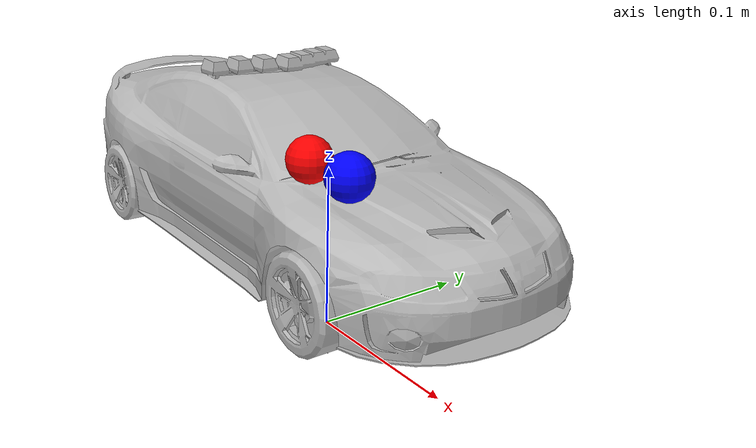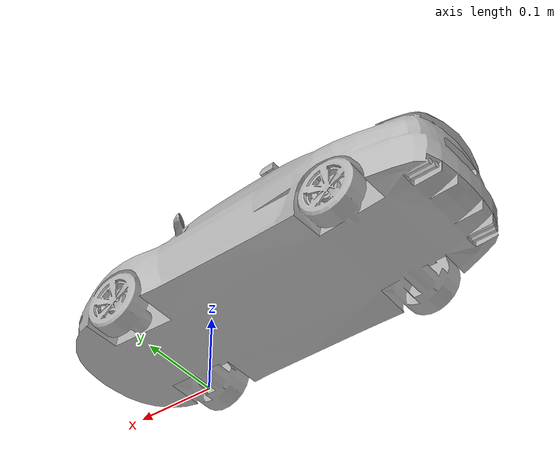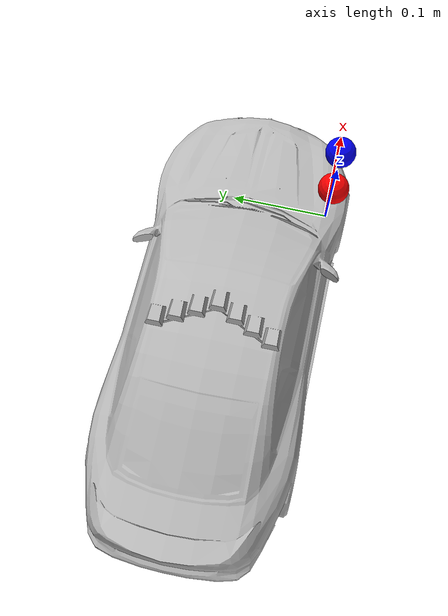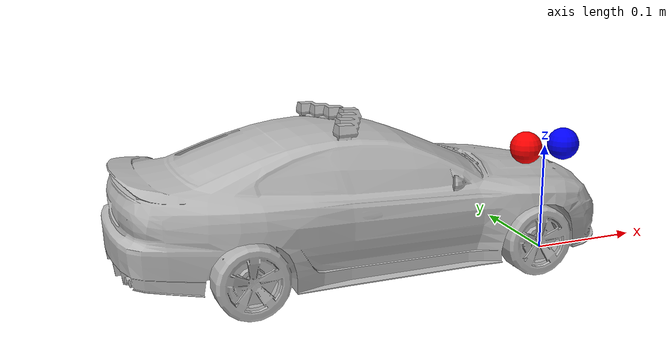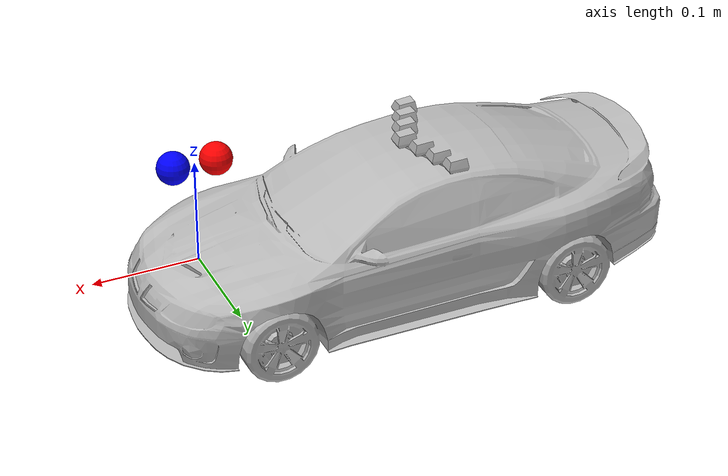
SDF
<?xml version="1.0"?>
<sdf version="1.6">
  <model name="police_car">
    <static>true</static>

    <link name="body">
      <pose>0 0 0 0 0 0</pose>

      <!-- 메시 비주얼 -->
      <visual name="visual">
        <pose>-0.12 0.08 0 0 0 0</pose>
        <geometry>
          <mesh>
            <uri>model://police_car/meshes/police_car.obj</uri>
            <scale>0.02 0.02 0.02</scale>
          </mesh>
        </geometry>
      </visual>

      <!-- 차체 collision (visual 크기에 맞춤) -->
      <collision name="collision">
        <geometry>
          <box>
            <size>0.25 0.12 0.08</size>
          </box>
        </geometry>
        <pose>0 0 0.04 0 0 0</pose>
      </collision>

      <!-- 빨간 경광등 (시각화) -->
      <visual name="red_light_visual">
        <pose>-0.02 0 0.1 0 0 0</pose>
        <geometry>
          <sphere>
            <radius>0.015</radius>
          </sphere>
        </geometry>
        <material>
          <ambient>1 0 0 1</ambient>
          <diffuse>1 0 0 1</diffuse>
          <emissive>1 0 0 1</emissive>
        </material>
      </visual>

      <!-- 파란 경광등 (시각화) -->
      <visual name="blue_light_visual">
        <pose>0.02 0 0.1 0 0 0</pose>
        <geometry>
          <sphere>
            <radius>0.015</radius>
          </sphere>
        </geometry>
        <material>
          <ambient>0 0 1 1</ambient>
          <diffuse>0 0 1 1</diffuse>
          <emissive>0 0 1 1</emissive>
        </material>
      </visual>

      <!-- 빨간 light source -->
      <light name="red_light" type="point">
        <pose>-0.02 0 0.1 0 0 0</pose>
        <diffuse>1 0 0 1</diffuse>
        <specular>1 0 0 1</specular>
        <attenuation>
          <range>5</range>
          <linear>0.1</linear>
          <constant>0.2</constant>
          <quadratic>0.0</quadratic>
        </attenuation>
        <cast_shadows>false</cast_shadows>
      </light>

      <!-- 파란 light source -->
      <light name="blue_light" type="point">
        <pose>0.02 0 0.1 0 0 0</pose>
        <diffuse>0 0 1 1</diffuse>
        <specular>0 0 1 1</specular>
        <attenuation>
          <range>5</range>
          <linear>0.1</linear>
          <constant>0.2</constant>
          <quadratic>0.0</quadratic>
        </attenuation>
        <cast_shadows>false</cast_shadows>
      </light>
    </link>

    <!-- 경광등 점멸 플러그인 -->
    <plugin name="flashlight_plugin" filename="libFlashLightPlugin.so">
      <enable>true</enable>
      <light>
        <id>body/red_light</id>
        <duration>0.5</duration>
        <interval>0.5</interval>
        <color>1 0 0</color>
      </light>
      <light>
        <id>body/blue_light</id>
        <duration>0.5</duration>
        <interval>0.5</interval>
        <color>0 0 1</color>
        <enable>false</enable>
      </light>
    </plugin>
  </model>
</sdf>
